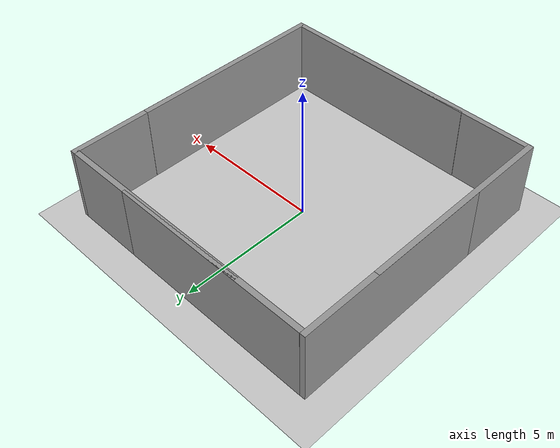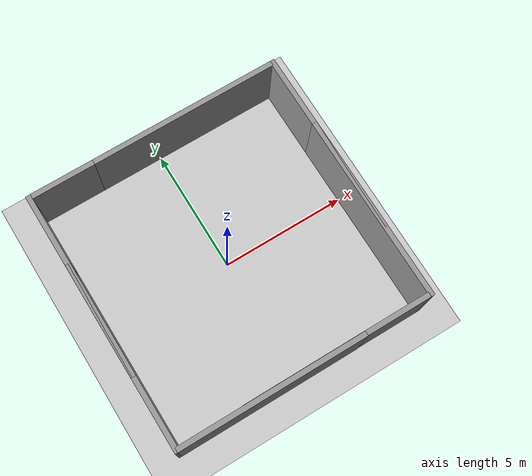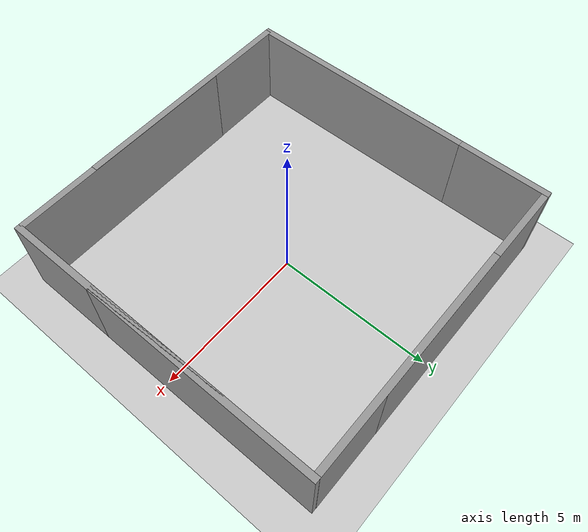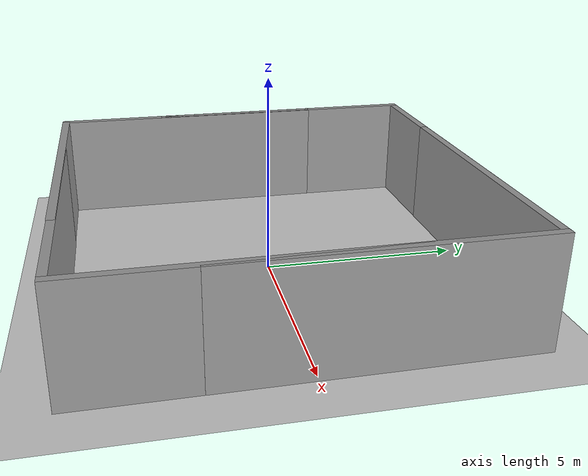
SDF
<sdf version="1.7">
 <world name="default">
  <light name="sun" type="directional">
   <pose>0 0 10 0 -0 0</pose>
   <diffuse>0.8 0.8 0.8 1</diffuse>
   <specular>0.2 0.2 0.2 1</specular>
   <attenuation>
    <range>1000</range>
    <constant>0.9</constant>
    <linear>0.01</linear>
    <quadratic>0.001</quadratic>
   </attenuation>
   <direction>-0.5 0.1 -0.9</direction>
   <spot><inner_angle>0</inner_angle><outer_angle>0</outer_angle><falloff>0</falloff></spot>
  </light>
  <model name="ground_plane">
   <static>1</static>
   <link name="link">
    <collision name="collision">
     <geometry><plane><normal>0 0 1</normal><size>100 100</size></plane></geometry>
     <surface>
      <contact><collide_bitmask>65535</collide_bitmask></contact>
      <friction><ode><mu>100</mu><mu2>50</mu2></ode></friction>
     </surface>
    </collision>
    <visual name="visual">
     <cast_shadows>0</cast_shadows>
     <geometry><plane><normal>0 0 1</normal><size>100 100</size></plane></geometry>
     <material>
      <script><uri>file://media/materials/scripts/gazebo.material</uri><name>Gazebo/Grey</name></script>
     </material>
    </visual>
   </link>
  </model>
  <gravity>0 0 -9.8</gravity>
  <magnetic_field>6e-06 2.3e-05 -4.2e-05</magnetic_field>
  <atmosphere type="adiabatic"/>
  <physics type="ode">
   <max_step_size>0.001</max_step_size>
   <real_time_factor>1</real_time_factor>
   <real_time_update_rate>1000</real_time_update_rate>
  </physics>
  <scene><ambient>0.4 0.4 0.4 1</ambient><background>0.7 0.7 0.7 1</background><shadows>1</shadows></scene>
  <audio><device>default</device></audio>
  <spherical_coordinates>
   <surface_model>EARTH_WGS84</surface_model>
   <latitude_deg>0</latitude_deg>
   <longitude_deg>0</longitude_deg>
   <elevation>0</elevation>
   <heading_deg>0</heading_deg>
  </spherical_coordinates>
  <model name="grey_wall">
   <static>1</static>
   <link name="link">
    <pose>0 0 1.4 0 -0 0</pose>
    <collision name="collision"><geometry><box><size>7.5 0.2 2.8</size></box></geometry></collision>
    <visual name="visual">
     <cast_shadows>0</cast_shadows>
     <geometry><box><size>7.5 0.2 2.8</size></box></geometry>
     <material>
      <script>
       <uri>model://grey_wall/materials/scripts</uri>
       <uri>model://grey_wall/materials/textures</uri>
       <name>vrc/grey_wall</name>
      </script>
     </material>
    </visual>
   </link>
   <pose>-1.31116 -5.11498 0 0 -0 0</pose>
  </model>
  <model name="grey_wall_0">
   <static>1</static>
   <link name="link">
    <pose>0 0 1.4 0 -0 0</pose>
    <collision name="collision"><geometry><box><size>7.5 0.2 2.8</size></box></geometry></collision>
    <visual name="visual">
     <cast_shadows>0</cast_shadows>
     <geometry><box><size>7.5 0.2 2.8</size></box></geometry>
     <material>
      <script>
       <uri>model://grey_wall/materials/scripts</uri>
       <uri>model://grey_wall/materials/textures</uri>
       <name>vrc/grey_wall</name>
      </script>
     </material>
    </visual>
   </link>
   <pose>1.29028 -5.10306 0 0 -0 0</pose>
  </model>
  <model name="grey_wall_1">
   <static>1</static>
   <link name="link">
    <pose>0 0 1.4 0 -0 0</pose>
    <collision name="collision"><geometry><box><size>7.5 0.2 2.8</size></box></geometry></collision>
    <visual name="visual">
     <cast_shadows>0</cast_shadows>
     <geometry><box><size>7.5 0.2 2.8</size></box></geometry>
     <material>
      <script>
       <uri>model://grey_wall/materials/scripts</uri>
       <uri>model://grey_wall/materials/textures</uri>
       <name>vrc/grey_wall</name>
      </script>
     </material>
    </visual>
   </link>
   <pose>1.24946 5.10184 0 0 -0 0</pose>
  </model>
  <model name="grey_wall_2">
   <static>1</static>
   <link name="link">
    <pose>0 0 1.4 0 -0 0</pose>
    <collision name="collision"><geometry><box><size>7.5 0.2 2.8</size></box></geometry></collision>
    <visual name="visual">
     <cast_shadows>0</cast_shadows>
     <geometry><box><size>7.5 0.2 2.8</size></box></geometry>
     <material>
      <script>
       <uri>model://grey_wall/materials/scripts</uri>
       <uri>model://grey_wall/materials/textures</uri>
       <name>vrc/grey_wall</name>
      </script>
     </material>
    </visual>
   </link>
   <pose>-1.25431 5.10307 0 0 -0 0</pose>
  </model>
  <model name="grey_wall_3">
   <static>1</static>
   <link name="link">
    <pose>0 0 1.4 0 -0 0</pose>
    <collision name="collision"><geometry><box><size>7.5 0.2 2.8</size></box></geometry></collision>
    <visual name="visual">
     <cast_shadows>0</cast_shadows>
     <geometry><box><size>7.5 0.2 2.8</size></box></geometry>
     <material>
      <script>
       <uri>model://grey_wall/materials/scripts</uri>
       <uri>model://grey_wall/materials/textures</uri>
       <name>vrc/grey_wall</name>
      </script>
     </material>
    </visual>
   </link>
   <pose>-5.08889 1.44939 -0 0 -0 1.57506</pose>
  </model>
  <model name="grey_wall_3_clone">
   <static>1</static>
   <link name="link">
    <pose>0 0 1.4 0 -0 0</pose>
    <collision name="collision"><geometry><box><size>7.5 0.2 2.8</size></box></geometry></collision>
    <visual name="visual">
     <cast_shadows>0</cast_shadows>
     <geometry><box><size>7.5 0.2 2.8</size></box></geometry>
     <material>
      <script>
       <uri>model://grey_wall/materials/scripts</uri>
       <uri>model://grey_wall/materials/textures</uri>
       <name>vrc/grey_wall</name>
      </script>
     </material>
    </visual>
   </link>
   <pose>-5.07428 -1.46139 0 0 -0 1.57506</pose>
  </model>
  <model name="grey_wall_3_clone_0">
   <static>1</static>
   <link name="link">
    <pose>0 0 1.4 0 -0 0</pose>
    <collision name="collision"><geometry><box><size>7.5 0.2 2.8</size></box></geometry></collision>
    <visual name="visual">
     <cast_shadows>0</cast_shadows>
     <geometry><box><size>7.5 0.2 2.8</size></box></geometry>
     <material>
      <script>
       <uri>model://grey_wall/materials/scripts</uri>
       <uri>model://grey_wall/materials/textures</uri>
       <name>vrc/grey_wall</name>
      </script>
     </material>
    </visual>
   </link>
   <pose>5.07865 -1.4517 0 0 -0 1.57506</pose>
  </model>
  <model name="grey_wall_3_clone_1">
   <static>1</static>
   <link name="link">
    <pose>0 0 1.4 0 -0 0</pose>
    <collision name="collision"><geometry><box><size>7.5 0.2 2.8</size></box></geometry></collision>
    <visual name="visual">
     <cast_shadows>0</cast_shadows>
     <geometry><box><size>7.5 0.2 2.8</size></box></geometry>
     <material>
      <script>
       <uri>model://grey_wall/materials/scripts</uri>
       <uri>model://grey_wall/materials/textures</uri>
       <name>vrc/grey_wall</name>
      </script>
     </material>
    </visual>
   </link>
   <pose>5.06821 1.44896 0 0 -0 1.57506</pose>
  </model>
 </world>
</sdf>
